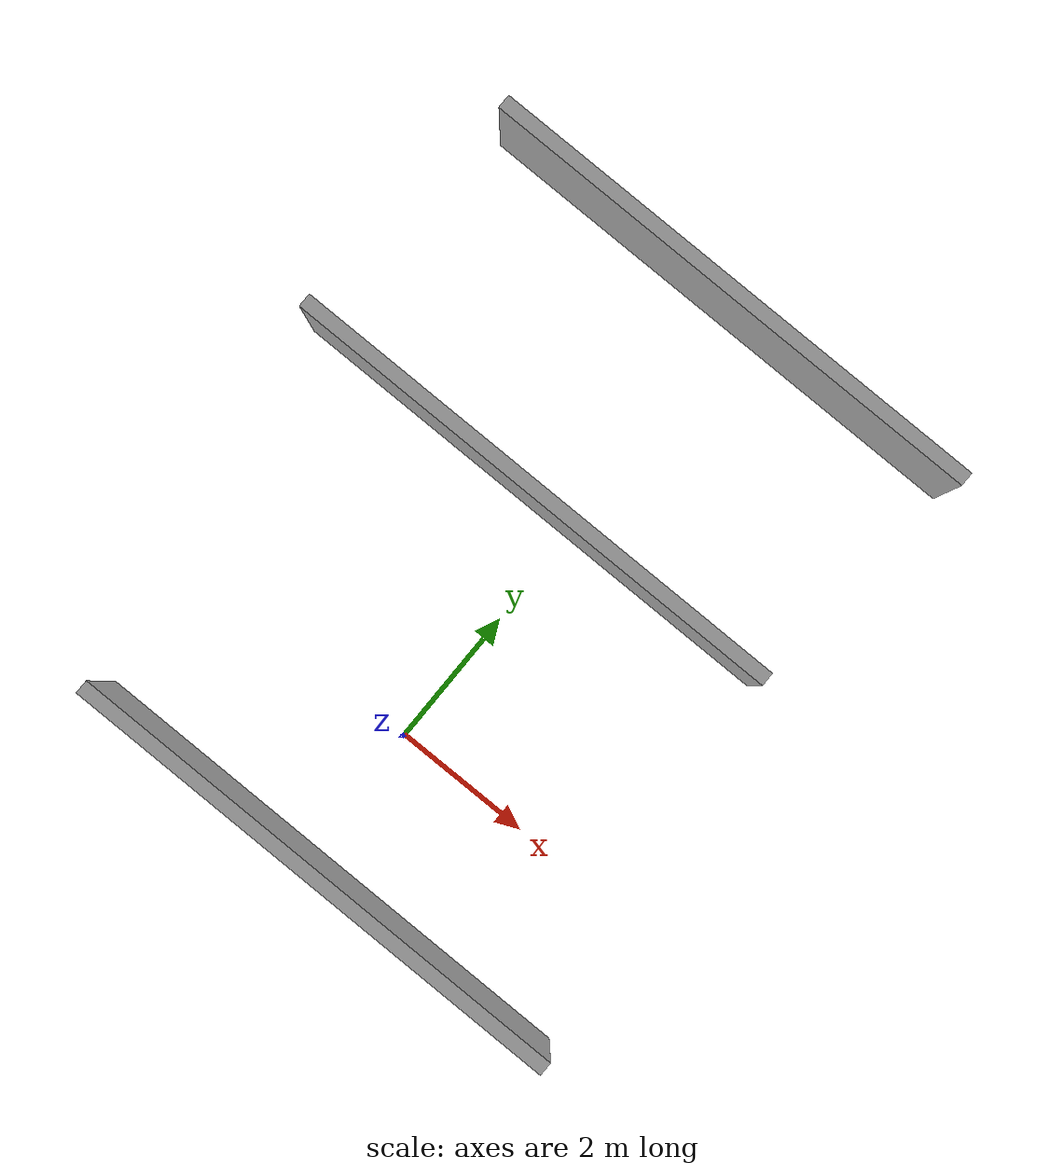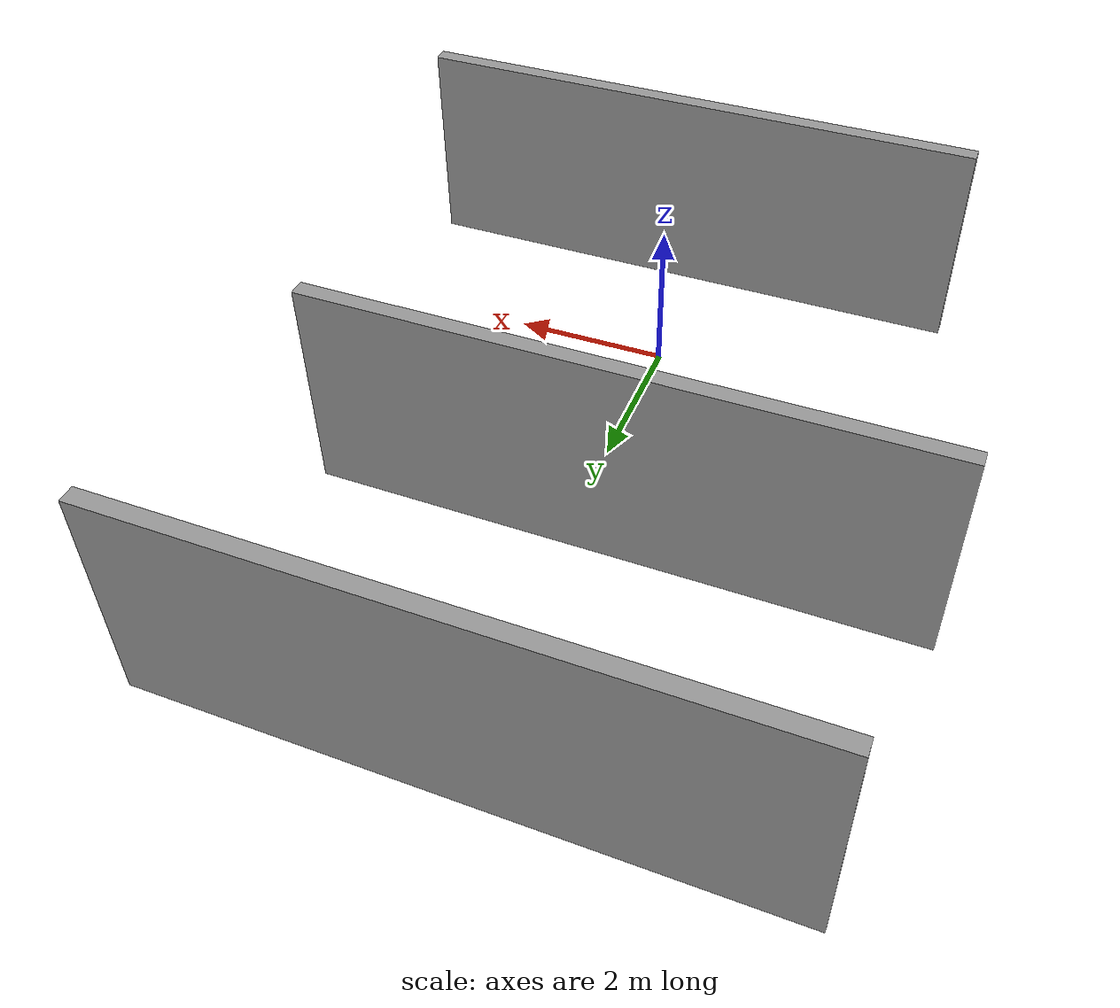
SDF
<sdf version="1.6">
 <world name="default">
  <gravity>0 0 -9.8</gravity>
  <magnetic_field>6e-06 2.3e-05 -4.2e-05</magnetic_field>
  <atmosphere type="adiabatic"/>
  <physics name="default_physics" default="0" type="ode">
   <max_step_size>0.001</max_step_size>
   <real_time_factor>1</real_time_factor>
   <real_time_update_rate>1000</real_time_update_rate>
  </physics>
  <scene><ambient>0.4 0.4 0.4 1</ambient><background>0.7 0.7 0.7 1</background><shadows>1</shadows></scene>
  <spherical_coordinates>
   <surface_model>EARTH_WGS84</surface_model>
   <latitude_deg>0</latitude_deg>
   <longitude_deg>0</longitude_deg>
   <elevation>0</elevation>
   <heading_deg>0</heading_deg>
  </spherical_coordinates>
  <model name="grey_wall">
   <static>1</static>
   <link name="link">
    <pose>0 0 1.4 0 -0 0</pose>
    <collision name="collision"><geometry><box><size>7.5 0.2 2.8</size></box></geometry></collision>
    <visual name="visual">
     <cast_shadows>0</cast_shadows>
     <geometry><box><size>7.5 0.2 2.8</size></box></geometry>
     <material>
      <script>
       <uri>model://grey_wall/materials/scripts</uri>
       <uri>model://grey_wall/materials/textures</uri>
       <name>vrc/grey_wall</name>
      </script>
     </material>
    </visual>
   </link>
   <pose>0.297859 -2.00013 0 0 -0 0</pose>
  </model>
  <model name="grey_wall_0">
   <static>1</static>
   <link name="link">
    <pose>0 0 1.4 0 -0 0</pose>
    <collision name="collision"><geometry><box><size>7.5 0.2 2.8</size></box></geometry></collision>
    <visual name="visual">
     <cast_shadows>0</cast_shadows>
     <geometry><box><size>7.5 0.2 2.8</size></box></geometry>
     <material>
      <script>
       <uri>model://grey_wall/materials/scripts</uri>
       <uri>model://grey_wall/materials/textures</uri>
       <name>vrc/grey_wall</name>
      </script>
     </material>
    </visual>
   </link>
   <pose>-0.286652 7.02804 0 0 -0 0</pose>
  </model>
  <model name="grey_wall_1">
   <static>1</static>
   <link name="link">
    <pose>0 0 1.4 0 -0 0</pose>
    <collision name="collision"><geometry><box><size>7.5 0.2 2.8</size></box></geometry></collision>
    <visual name="visual">
     <cast_shadows>0</cast_shadows>
     <geometry><box><size>7.5 0.2 2.8</size></box></geometry>
     <material>
      <script>
       <uri>model://grey_wall/materials/scripts</uri>
       <uri>model://grey_wall/materials/textures</uri>
       <name>vrc/grey_wall</name>
      </script>
     </material>
    </visual>
   </link>
   <pose>-0.631401 3.50661 0 0 -0 0</pose>
  </model>
 </world>
</sdf>
